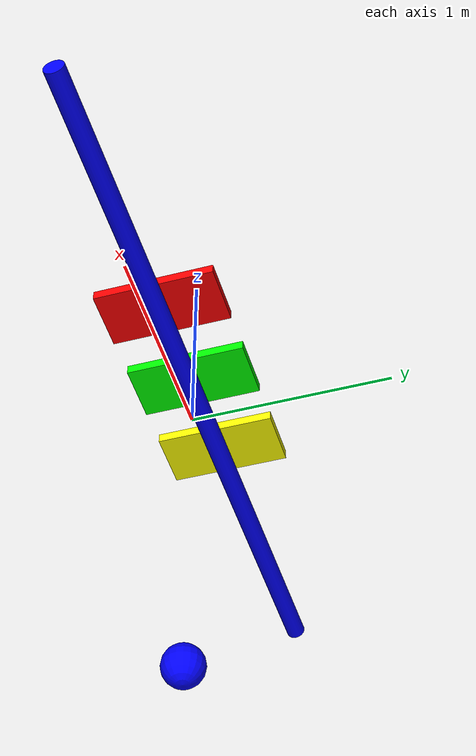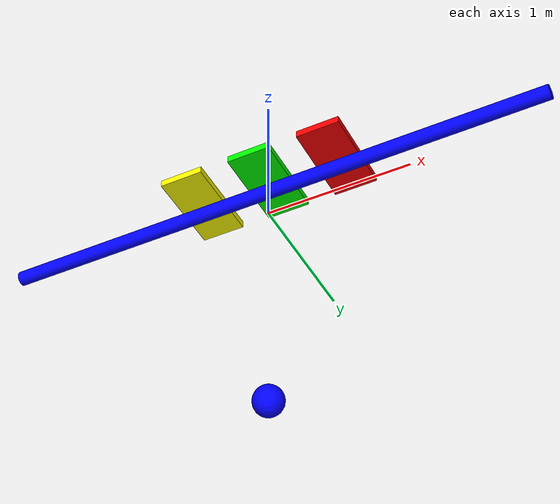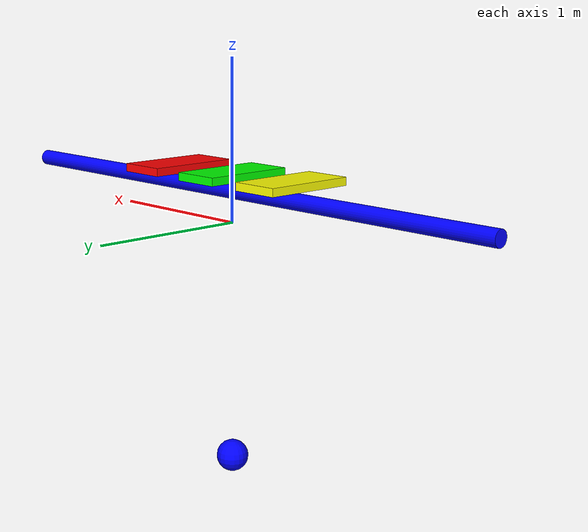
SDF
<?xml version='1.0'?>
<sdf version='1.7'>
  <model name='Tripteron'>

    <static>false</static>

    <!-- Base Link -->
    <link name='base_link'>
      <visual name='base_link_visual'>
        <geometry>
          <cylinder>
            <radius>0.05</radius>
            <length>3.9</length>
          </cylinder>
        </geometry>
        <material><ambient>0 0 1 1</ambient></material>
        <pose>0 0 0.2 1.5708 0 1.5708</pose>
      </visual>
    </link>

    <!-- Platforms (link1, link2, link3), sliders -->
    <link name='link1'>
      <visual name='visual'>
        <geometry>
          <box><size>0.3 0.6 0.05</size></box>
        </geometry>
        <material><ambient>1 0 0 1</ambient></material>
      </visual>
      <pose>0.5 0 0.3 0 0 0</pose>
    </link>

    <link name='link2'>
      <visual name='visual'>
        <geometry>
          <box><size>0.3 0.6 0.05</size></box>
        </geometry>
        <material><ambient>0 1 0 1</ambient></material>
      </visual>
      <pose>0 0 0.3 0 0 0</pose>
    </link>

    <link name='link3'>
      <visual name='visual'>
        <geometry>
          <box><size>0.3 0.6 0.05</size></box>
        </geometry>
        <material><ambient>1 1 0 1</ambient></material>
      </visual>
      <pose>-0.5 0 0.3 0 0 0</pose>
    </link>

    <!-- End-Effector -->
    <link name='end_effector'>
      <visual name='visual'>
        <geometry>
          <sphere><radius>0.1</radius></sphere>
        </geometry>
        <material><ambient>0 0 1 1</ambient></material>
      </visual>
      <pose>0 0 -1.5 0 0 0</pose>
    </link>

    <!-- Joints: Base to Platforms -->
    <joint name='joint1' type='prismatic'>
      <parent>base_link</parent><child>link1</child>
      <axis><xyz>1 0 0</xyz><limit><lower>-1.95</lower><upper>1.95</upper></limit></axis>
    </joint>
    <joint name='joint2' type='prismatic'>
      <parent>base_link</parent><child>link2</child>
      <axis><xyz>1 0 0</xyz><limit><lower>-1.95</lower><upper>1.95</upper></limit></axis>
    </joint>
    <joint name='joint3' type='prismatic'>
      <parent>base_link</parent><child>link3</child>
      <axis><xyz>1 0 0</xyz><limit><lower>-1.95</lower><upper>1.95</upper></limit></axis>
    </joint>

    <!-- Arms and Parallel joints -->
    <!-- Left arm -->
    <joint name='left_arm_joint' type='universal'>
      <parent>link1</parent><child>end_effector</child>
      <pose>0.5 0 0.3 0 0 0</pose>
      <axis><xyz>1 0 0</xyz></axis>
      <axis2><xyz>0 1 0</xyz></axis2>
    </joint>

    <!-- Middle arm -->
    <joint name='mid_arm_joint' type='universal'>
      <parent>link2</parent><child>end_effector</child>
      <pose>0 0 0.3 0 0 0.8727</pose>
      <axis><xyz>1 0 0</xyz></axis>
      <axis2><xyz>0 1 0</xyz></axis2>
    </joint>

    <!-- Right arm -->
    <joint name='right_arm_joint' type='universal'>
      <parent>link3</parent><child>end_effector</child>
      <pose>-0.5 0 0.3 0 0 0</pose>
      <axis><xyz>1 0 0</xyz></axis>
      <axis2><xyz>0 1 0</xyz></axis2>
    </joint>

  </model>
</sdf>
